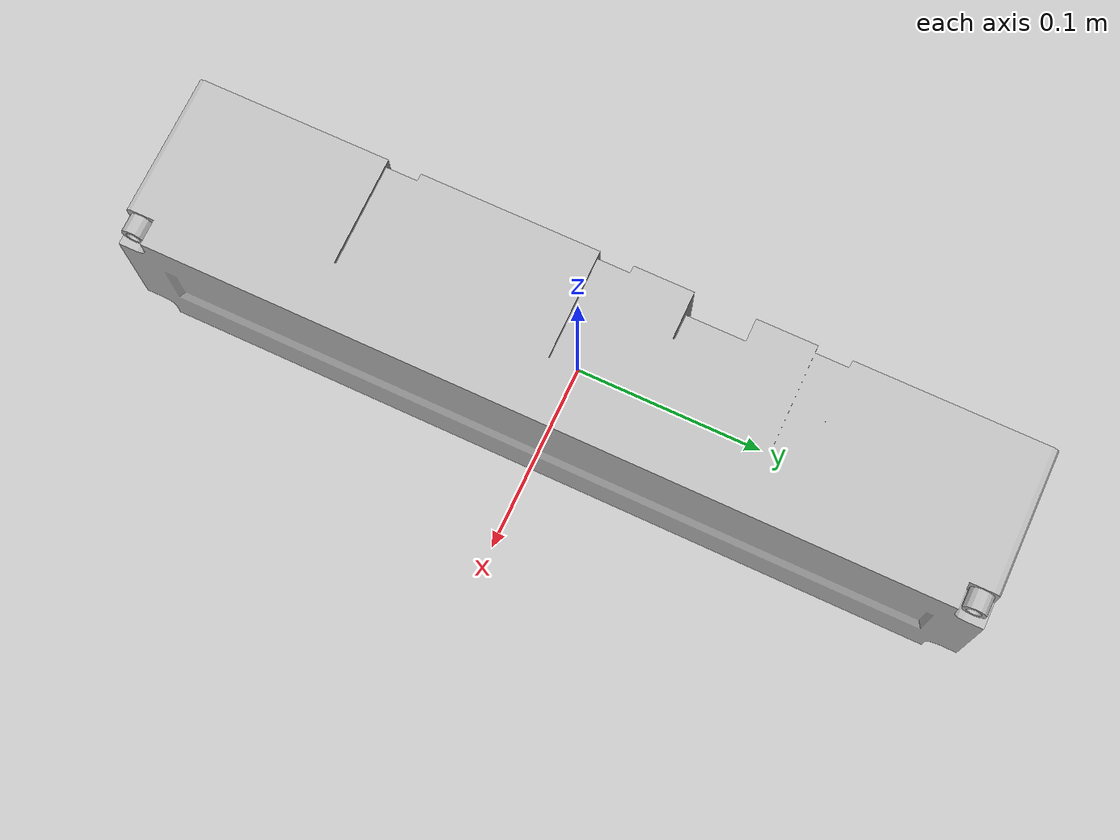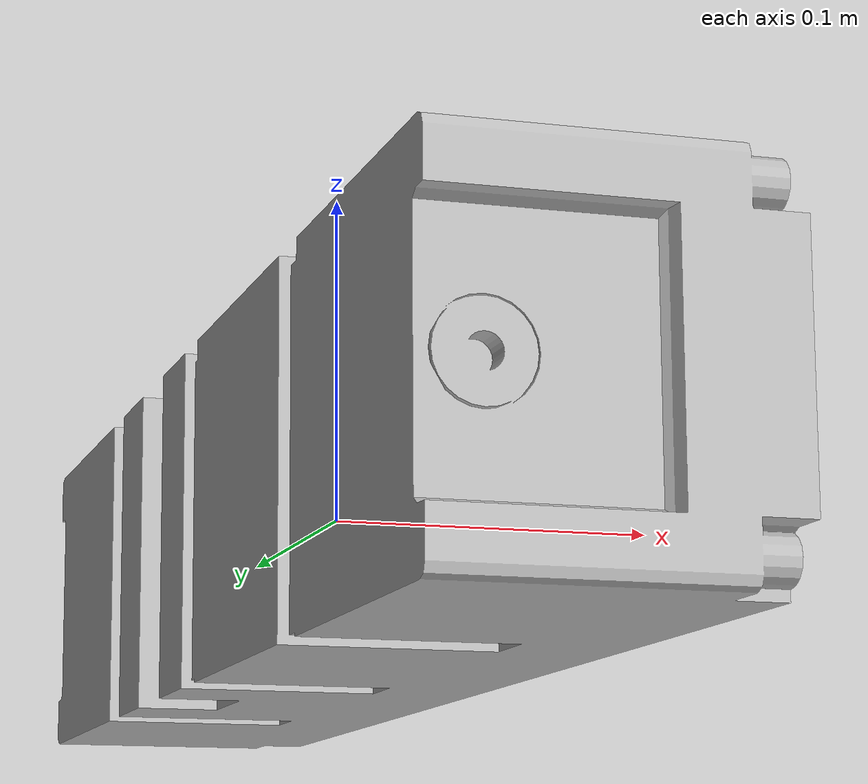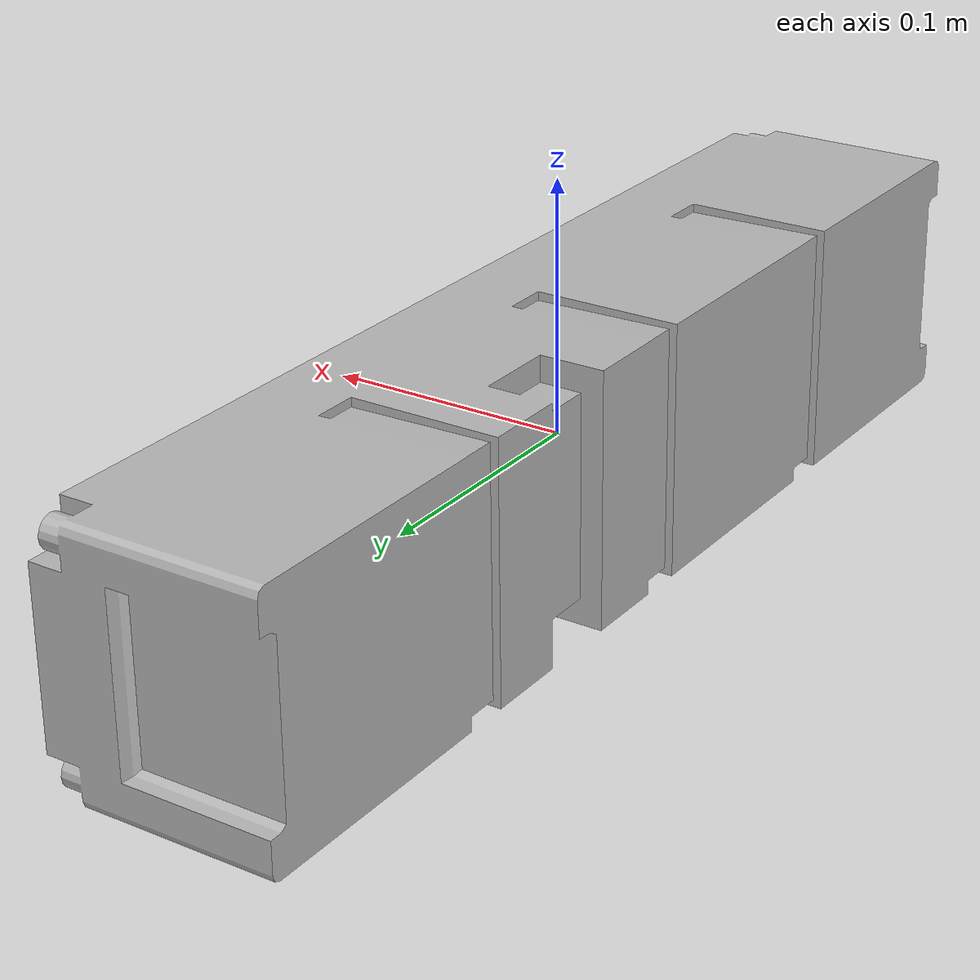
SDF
<?xml version="1.0" ?>
<sdf version="1.6">
  <model name="SeaBat-F50 FLS">
    <link name="forward_sonar_link">
      <inertial>
        <pose>0 0 0 0 0 1.570796</pose>
        <mass>8.2</mass>
        <inertia>
          <ixx>0.151702733</ixx>
          <ixy>0</ixy>
          <ixz>0</ixz>
          <iyy>0.012730835</iyy>
          <iyz>0</iyz>
          <izz>0.150214768</izz>
        </inertia>
      </inertial>
      <collision name="collision">
        <pose>0 0 0 0 0 1.570796</pose>
        <geometry>
          <box>
            <size>0.46 0.0907 0.102</size>
          </box>
        </geometry>
      </collision>
      <collision name="collision">
        <pose>0 0 0 0 1.570796 0</pose>
        <geometry>
          <mesh>
            <uri>model://seabat_f50_nps_multibeam/meshes/COLLISION-SeaBat-F50.dae</uri>
          </mesh>
        </geometry>
      </collision>
      <visual name="visual">
        <pose>0 0 0 0 1.570796 0</pose>
        <geometry>
          <mesh>
            <uri>model://seabat_f50_nps_multibeam/meshes/SeaBat-F50.dae</uri>
          </mesh>
        </geometry>
      </visual>

      <sensor name="multibeam_sonar" type="depth">
        <visualize>true</visualize>
        <always_on>true</always_on>
        <update_rate>15</update_rate>
        <camera>
          <!-- 140 degrees -->
          <horizontal_fov>2.44346</horizontal_fov>
          <image>
            <width>256</width>
            <!-- Set vertical FOV by setting image height -->
            <!-- Approx 1 times the spec sheet (sepc: 24 deg.) -->
            <height>43</height>
            <format>R8G8B8</format>
          </image>
          <clip>
            <near>2</near>            <!-- not defined -->
            <far>60</far>
          </clip>
          <depth_camera>
            <output>depths</output>
          </depth_camera>
          <save enabled="true">
            <path>/tmp/camera</path>
          </save>
        </camera>
        <plugin filename="libnps_multibeam_sonar_ros_plugin.so" name="forward_sonar">
          <!-- Sonar properties -->
          <verticalFOV>24</verticalFOV>
          <sonarFreq>400e3</sonarFreq>
          <bandwidth>29.9e3</bandwidth>
          <soundSpeed>1500</soundSpeed>
          <sourceLevel>220</sourceLevel>
          <maxDistance>10</maxDistance>
          <constantReflectivity>true</constantReflectivity>
          <raySkips>1</raySkips>
          <sensorGain>0.02</sensorGain>
          <plotScaler>0</plotScaler>
          <writeLog>false</writeLog>
          <debugFlag>false</debugFlag>
          <writeFrameInterval>5</writeFrameInterval>
          <!-- This name is prepended to ROS topics -->
          <cameraName>seabat_f50</cameraName>
          <!-- ROS publication topics -->
          <imageTopicName>image_raw</imageTopicName>
          <cameraInfoTopicName>image_raw/camera_info</cameraInfoTopicName>
          <pointCloudTopicName>point_cloud</pointCloudTopicName>
          <depthImageTopicName>image_depth</depthImageTopicName>
          <depthImageCameraInfoTopicName>image_depth/camera_info</depthImageCameraInfoTopicName>
          <sonarImageRawTopicName>sonar_image_raw</sonarImageRawTopicName>
          <sonarImageTopicName>sonar_image</sonarImageTopicName>
          <frameName>forward_sonar_optical_link</frameName>
        </plugin>
      </sensor>
    </link>
  </model>
</sdf>
